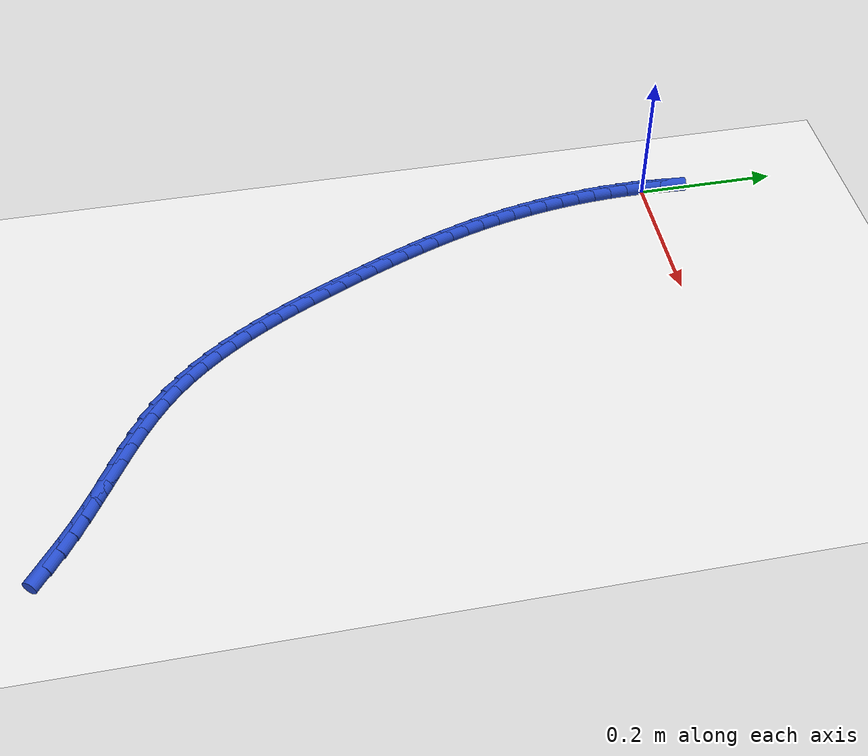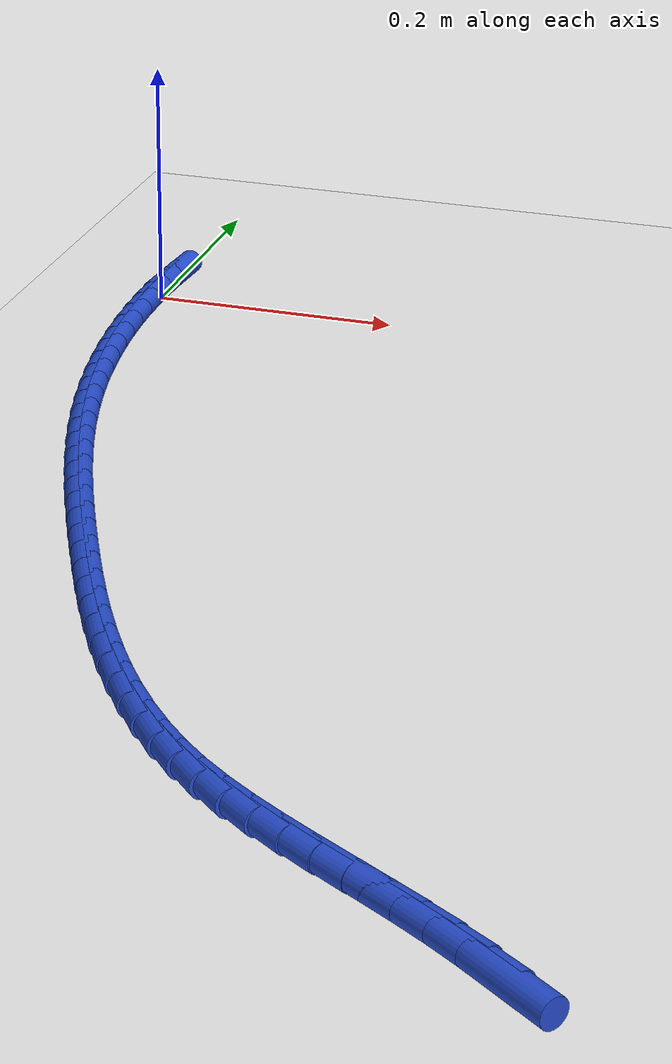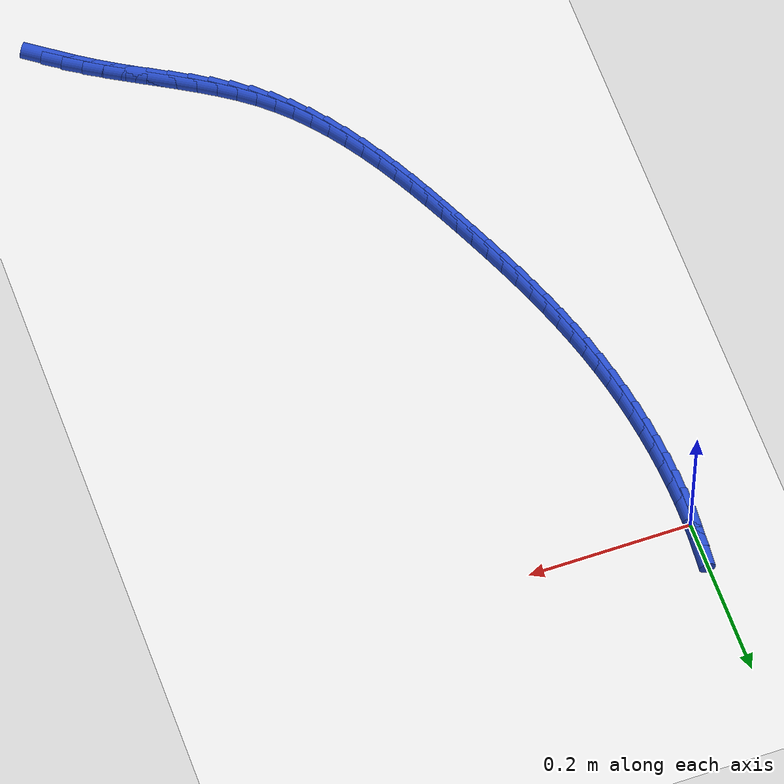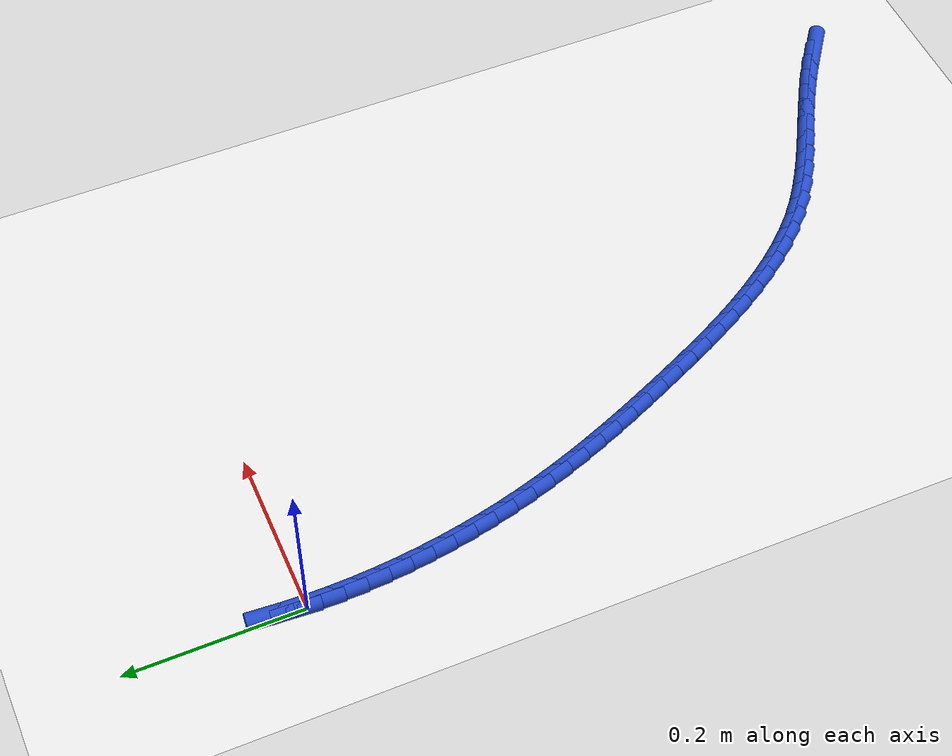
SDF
<sdf version="1.6">
 <world name="default">
  <model name="ground_plane">
   <static>1</static>
   <link name="link">
    <collision name="collision">
     <geometry><plane><normal>0 0 1</normal><size>100 100</size></plane></geometry>
     <surface><friction><ode><mu>100</mu><mu2>50</mu2></ode></friction></surface>
    </collision>
    <visual name="visual">
     <cast_shadows>0</cast_shadows>
     <geometry><plane><normal>0 0 1</normal><size>100 100</size></plane></geometry>
     <material>
      <script><uri>file://media/materials/scripts/gazebo.material</uri><name>Gazebo/WhiteGlow</name></script>
     </material>
    </visual>
   </link>
  </model>
  <model name="line">
   <link name="link_0">
    <pose>1.214306433183765e-17 3.469446951953614e-17 0.01 0 1.57 1.5339829788960886</pose>
    <collision name="collision">
     <geometry><cylinder><radius>0.01</radius><length>0.08</length></cylinder></geometry>
    </collision>
    <visual name="visual">
     <material>
      <script><name>Gazebo/Blue</name><uri>file://media/materials/scripts/gazebo.material</uri></script>
     </material>
     <geometry><cylinder><radius>0.01</radius><length>0.08</length></cylinder></geometry>
    </visual>
   </link>
   <link name="link_219">
    <pose>0.5007906378705129 -0.8554281643524542 0.01 0 1.57 -0.6216869499286858</pose>
    <collision name="collision">
     <geometry><cylinder><radius>0.01</radius><length>0.08</length></cylinder></geometry>
    </collision>
    <visual name="visual">
     <material>
      <script><name>Gazebo/Blue</name><uri>file://media/materials/scripts/gazebo.material</uri></script>
     </material>
     <geometry><cylinder><radius>0.01</radius><length>0.08</length></cylinder></geometry>
    </visual>
   </link>
   <link name="link_220">
    <pose>0.4795608764625124 -0.8402179147373394 0.01 0 1.57 -0.5879189418440153</pose>
    <collision name="collision">
     <geometry><cylinder><radius>0.01</radius><length>0.08</length></cylinder></geometry>
    </collision>
    <visual name="visual">
     <material>
      <script><name>Gazebo/Blue</name><uri>file://media/materials/scripts/gazebo.material</uri></script>
     </material>
     <geometry><cylinder><radius>0.01</radius><length>0.08</length></cylinder></geometry>
    </visual>
   </link>
   <link name="link_221">
    <pose>0.45790539792751817 -0.8257835458508354 0.01 0 1.57 -0.5529512063231349</pose>
    <collision name="collision">
     <geometry><cylinder><radius>0.01</radius><length>0.08</length></cylinder></geometry>
    </collision>
    <visual name="visual">
     <material>
      <script><name>Gazebo/Blue</name><uri>file://media/materials/scripts/gazebo.material</uri></script>
     </material>
     <geometry><cylinder><radius>0.01</radius><length>0.08</length></cylinder></geometry>
    </visual>
   </link>
   <link name="link_222">
    <pose>0.4358367705413384 -0.8121633816921523 0.01 0 1.57 -0.5291459372971848</pose>
    <collision name="collision">
     <geometry><cylinder><radius>0.01</radius><length>0.08</length></cylinder></geometry>
    </collision>
    <visual name="visual">
     <material>
      <script><name>Gazebo/Blue</name><uri>file://media/materials/scripts/gazebo.material</uri></script>
     </material>
     <geometry><cylinder><radius>0.01</radius><length>0.08</length></cylinder></geometry>
    </visual>
   </link>
   <link name="link_223">
    <pose>0.41352909046607245 -0.7991185123695362 0.01 0 1.57 -0.5176306730923373</pose>
    <collision name="collision">
     <geometry><cylinder><radius>0.01</radius><length>0.08</length></cylinder></geometry>
    </collision>
    <visual name="visual">
     <material>
      <script><name>Gazebo/Blue</name><uri>file://media/materials/scripts/gazebo.material</uri></script>
     </material>
     <geometry><cylinder><radius>0.01</radius><length>0.08</length></cylinder></geometry>
    </visual>
   </link>
   <link name="link_224">
    <pose>0.39116999127417507 -0.7863867934338247 0.01 0 1.57 -0.5185326467531155</pose>
    <collision name="collision">
     <geometry><cylinder><radius>0.01</radius><length>0.08</length></cylinder></geometry>
    </collision>
    <visual name="visual">
     <material>
      <script><name>Gazebo/Blue</name><uri>file://media/materials/scripts/gazebo.material</uri></script>
     </material>
     <geometry><cylinder><radius>0.01</radius><length>0.08</length></cylinder></geometry>
    </visual>
   </link>
   <link name="link_225">
    <pose>0.368947106538102 -0.7737060804358561 0.01 0 1.57 -0.5320654635970042</pose>
    <collision name="collision">
     <geometry><cylinder><radius>0.01</radius><length>0.08</length></cylinder></geometry>
    </collision>
    <visual name="visual">
     <material>
      <script><name>Gazebo/Blue</name><uri>file://media/materials/scripts/gazebo.material</uri></script>
     </material>
     <geometry><cylinder><radius>0.01</radius><length>0.08</length></cylinder></geometry>
    </visual>
   </link>
   <link name="link_226">
    <pose>0.34704806983030856 -0.7608142289264692 0.01 0 1.57 -0.5585291264294507</pose>
    <collision name="collision">
     <geometry><cylinder><radius>0.01</radius><length>0.08</length></cylinder></geometry>
    </collision>
    <visual name="visual">
     <material>
      <script><name>Gazebo/Blue</name><uri>file://media/materials/scripts/gazebo.material</uri></script>
     </material>
     <geometry><cylinder><radius>0.01</radius><length>0.08</length></cylinder></geometry>
    </visual>
   </link>
   <link name="link_227">
    <pose>0.3256605147232502 -0.7474490944565018 0.01 0 1.57 -0.598247533770198</pose>
    <collision name="collision">
     <geometry><cylinder><radius>0.01</radius><length>0.08</length></cylinder></geometry>
    </collision>
    <visual name="visual">
     <material>
      <script><name>Gazebo/Blue</name><uri>file://media/materials/scripts/gazebo.material</uri></script>
     </material>
     <geometry><cylinder><radius>0.01</radius><length>0.08</length></cylinder></geometry>
    </visual>
   </link>
   <link name="link_228">
    <pose>0.3049720747893822 -0.7333485325767923 0.01 0 1.57 -0.6514322849961153</pose>
    <collision name="collision">
     <geometry><cylinder><radius>0.01</radius><length>0.08</length></cylinder></geometry>
    </collision>
    <visual name="visual">
     <material>
      <script><name>Gazebo/Blue</name><uri>file://media/materials/scripts/gazebo.material</uri></script>
     </material>
     <geometry><cylinder><radius>0.01</radius><length>0.08</length></cylinder></geometry>
    </visual>
   </link>
   <link name="link_229">
    <pose>0.2851703836011595 -0.7182503988381785 0.01 0 1.57 -0.7169633179140327</pose>
    <collision name="collision">
     <geometry><cylinder><radius>0.01</radius><length>0.08</length></cylinder></geometry>
    </collision>
    <visual name="visual">
     <material>
      <script><name>Gazebo/Blue</name><uri>file://media/materials/scripts/gazebo.material</uri></script>
     </material>
     <geometry><cylinder><radius>0.01</radius><length>0.08</length></cylinder></geometry>
    </visual>
   </link>
   <link name="link_230">
    <pose>0.26642884532235017 -0.701913221673572 0.01 0 1.57 -0.7834834857074757</pose>
    <collision name="collision">
     <geometry><cylinder><radius>0.01</radius><length>0.08</length></cylinder></geometry>
    </collision>
    <visual name="visual">
     <material>
      <script><name>Gazebo/Blue</name><uri>file://media/materials/scripts/gazebo.material</uri></script>
     </material>
     <geometry><cylinder><radius>0.01</radius><length>0.08</length></cylinder></geometry>
    </visual>
   </link>
   <link name="link_231">
    <pose>0.24876707632964648 -0.6843189567050205 0.01 0 1.57 -0.8440082103598829</pose>
    <collision name="collision">
     <geometry><cylinder><radius>0.01</radius><length>0.08</length></cylinder></geometry>
    </collision>
    <visual name="visual">
     <material>
      <script><name>Gazebo/Blue</name><uri>file://media/materials/scripts/gazebo.material</uri></script>
     </material>
     <geometry><cylinder><radius>0.01</radius><length>0.08</length></cylinder></geometry>
    </visual>
   </link>
   <link name="link_232">
    <pose>0.23211073166680454 -0.665586069201438 0.01 0 1.57 -0.8983521574916439</pose>
    <collision name="collision">
     <geometry><cylinder><radius>0.01</radius><length>0.08</length></cylinder></geometry>
    </collision>
    <visual name="visual">
     <material>
      <script><name>Gazebo/Blue</name><uri>file://media/materials/scripts/gazebo.material</uri></script>
     </material>
     <geometry><cylinder><radius>0.01</radius><length>0.08</length></cylinder></geometry>
    </visual>
   </link>
   <link name="link_233">
    <pose>0.21638412044239616 -0.6458349798439378 0.01 0 1.57 -0.9466016414891985</pose>
    <collision name="collision">
     <geometry><cylinder><radius>0.01</radius><length>0.08</length></cylinder></geometry>
    </collision>
    <visual name="visual">
     <material>
      <script><name>Gazebo/Blue</name><uri>file://media/materials/scripts/gazebo.material</uri></script>
     </material>
     <geometry><cylinder><radius>0.01</radius><length>0.08</length></cylinder></geometry>
    </visual>
   </link>
   <link name="link_234">
    <pose>0.2015115517649931 -0.6251861093136329 0.01 0 1.57 -0.9889559539104145</pose>
    <collision name="collision">
     <geometry><cylinder><radius>0.01</radius><length>0.08</length></cylinder></geometry>
    </collision>
    <visual name="visual">
     <material>
      <script><name>Gazebo/Blue</name><uri>file://media/materials/scripts/gazebo.material</uri></script>
     </material>
     <geometry><cylinder><radius>0.01</radius><length>0.08</length></cylinder></geometry>
    </visual>
   </link>
   <link name="link_235">
    <pose>0.1874173347431672 -0.6037598782916368 0.01 0 1.57 -1.0256735852151533</pose>
    <collision name="collision">
     <geometry><cylinder><radius>0.01</radius><length>0.08</length></cylinder></geometry>
    </collision>
    <visual name="visual">
     <material>
      <script><name>Gazebo/Blue</name><uri>file://media/materials/scripts/gazebo.material</uri></script>
     </material>
     <geometry><cylinder><radius>0.01</radius><length>0.08</length></cylinder></geometry>
    </visual>
   </link>
   <link name="link_236">
    <pose>0.17402577848548992 -0.5816767074590622 0.01 0 1.57 -1.057030656007072</pose>
    <collision name="collision">
     <geometry><cylinder><radius>0.01</radius><length>0.08</length></cylinder></geometry>
    </collision>
    <visual name="visual">
     <material>
      <script><name>Gazebo/Blue</name><uri>file://media/materials/scripts/gazebo.material</uri></script>
     </material>
     <geometry><cylinder><radius>0.01</radius><length>0.08</length></cylinder></geometry>
    </visual>
   </link>
   <link name="link_237">
    <pose>0.16126119210053377 -0.5590570174970234 0.01 0 1.57 -1.083290688105771</pose>
    <collision name="collision">
     <geometry><cylinder><radius>0.01</radius><length>0.08</length></cylinder></geometry>
    </collision>
    <visual name="visual">
     <material>
      <script><name>Gazebo/Blue</name><uri>file://media/materials/scripts/gazebo.material</uri></script>
     </material>
     <geometry><cylinder><radius>0.01</radius><length>0.08</length></cylinder></geometry>
    </visual>
   </link>
   <link name="link_238">
    <pose>0.1490478846968701 -0.5360212290866331 0.01 0 1.57 -1.1046834686197442</pose>
    <collision name="collision">
     <geometry><cylinder><radius>0.01</radius><length>0.08</length></cylinder></geometry>
    </collision>
    <visual name="visual">
     <material>
      <script><name>Gazebo/Blue</name><uri>file://media/materials/scripts/gazebo.material</uri></script>
     </material>
     <geometry><cylinder><radius>0.01</radius><length>0.08</length></cylinder></geometry>
    </visual>
   </link>
   <link name="link_239">
    <pose>0.13731016538307084 -0.512689762909005 0.01 0 1.57 -1.1213904448932717</pose>
    <collision name="collision">
     <geometry><cylinder><radius>0.01</radius><length>0.08</length></cylinder></geometry>
    </collision>
    <visual name="visual">
     <material>
      <script><name>Gazebo/Blue</name><uri>file://media/materials/scripts/gazebo.material</uri></script>
     </material>
     <geometry><cylinder><radius>0.01</radius><length>0.08</length></cylinder></geometry>
    </visual>
   </link>
   <link name="link_240">
    <pose>0.12597234326770768 -0.4891830396452518 0.01 0 1.57 -1.1335343062804293</pose>
    <collision name="collision">
     <geometry><cylinder><radius>0.01</radius><length>0.08</length></cylinder></geometry>
    </collision>
    <visual name="visual">
     <material>
      <script><name>Gazebo/Blue</name><uri>file://media/materials/scripts/gazebo.material</uri></script>
     </material>
     <geometry><cylinder><radius>0.01</radius><length>0.08</length></cylinder></geometry>
    </visual>
   </link>
   <link name="link_241">
    <pose>0.11495872745935251 -0.46562147997648734 0.01 0 1.57 -1.1421815487849656</pose>
    <collision name="collision">
     <geometry><cylinder><radius>0.01</radius><length>0.08</length></cylinder></geometry>
    </collision>
    <visual name="visual">
     <material>
      <script><name>Gazebo/Blue</name><uri>file://media/materials/scripts/gazebo.material</uri></script>
     </material>
     <geometry><cylinder><radius>0.01</radius><length>0.08</length></cylinder></geometry>
    </visual>
   </link>
   <link name="link_242">
    <pose>0.10421164719974796 -0.4421020884875379 0.01 0 1.57 -1.1518789237869147</pose>
    <collision name="collision">
     <geometry><cylinder><radius>0.01</radius><length>0.08</length></cylinder></geometry>
    </collision>
    <visual name="visual">
     <material>
      <script><name>Gazebo/Blue</name><uri>file://media/materials/scripts/gazebo.material</uri></script>
     </material>
     <geometry><cylinder><radius>0.01</radius><length>0.08</length></cylinder></geometry>
    </visual>
   </link>
   <link name="link_243">
    <pose>0.09375425997836866 -0.4186168382402328 0.01 0 1.57 -1.1639153369285071</pose>
    <collision name="collision">
     <geometry><cylinder><radius>0.01</radius><length>0.08</length></cylinder></geometry>
    </collision>
    <visual name="visual">
     <material>
      <script><name>Gazebo/Blue</name><uri>file://media/materials/scripts/gazebo.material</uri></script>
     </material>
     <geometry><cylinder><radius>0.01</radius><length>0.08</length></cylinder></geometry>
    </visual>
   </link>
   <link name="link_244">
    <pose>0.08363237632966034 -0.39512826600549245 0.01 0 1.57 -1.1783008131908361</pose>
    <collision name="collision">
     <geometry><cylinder><radius>0.01</radius><length>0.08</length></cylinder></geometry>
    </collision>
    <visual name="visual">
     <material>
      <script><name>Gazebo/Blue</name><uri>file://media/materials/scripts/gazebo.material</uri></script>
     </material>
     <geometry><cylinder><radius>0.01</radius><length>0.08</length></cylinder></geometry>
    </visual>
   </link>
   <link name="link_245">
    <pose>0.07389180791234268 -0.3715989070933091 0.01 0 1.57 -1.1950315322214689</pose>
    <collision name="collision">
     <geometry><cylinder><radius>0.01</radius><length>0.08</length></cylinder></geometry>
    </collision>
    <visual name="visual">
     <material>
      <script><name>Gazebo/Blue</name><uri>file://media/materials/scripts/gazebo.material</uri></script>
     </material>
     <geometry><cylinder><radius>0.01</radius><length>0.08</length></cylinder></geometry>
    </visual>
   </link>
   <link name="link_246">
    <pose>0.06457836638513617 -0.3479912968136768 0.01 0 1.57 -1.2140873200124218</pose>
    <collision name="collision">
     <geometry><cylinder><radius>0.01</radius><length>0.08</length></cylinder></geometry>
    </collision>
    <visual name="visual">
     <material>
      <script><name>Gazebo/Blue</name><uri>file://media/materials/scripts/gazebo.material</uri></script>
     </material>
     <geometry><cylinder><radius>0.01</radius><length>0.08</length></cylinder></geometry>
    </visual>
   </link>
   <link name="link_247">
    <pose>0.05573786340676048 -0.3242679704765877 0.01 0 1.57 -1.2354289295290677</pose>
    <collision name="collision">
     <geometry><cylinder><radius>0.01</radius><length>0.08</length></cylinder></geometry>
    </collision>
    <visual name="visual">
     <material>
      <script><name>Gazebo/Blue</name><uri>file://media/materials/scripts/gazebo.material</uri></script>
     </material>
     <geometry><cylinder><radius>0.01</radius><length>0.08</length></cylinder></geometry>
    </visual>
   </link>
   <link name="link_248">
    <pose>0.047416110635935586 -0.3003914633920346 0.01 0 1.57 -1.2589953347147538</pose>
    <collision name="collision">
     <geometry><cylinder><radius>0.01</radius><length>0.08</length></cylinder></geometry>
    </collision>
    <visual name="visual">
     <material>
      <script><name>Gazebo/Blue</name><uri>file://media/materials/scripts/gazebo.material</uri></script>
     </material>
     <geometry><cylinder><radius>0.01</radius><length>0.08</length></cylinder></geometry>
    </visual>
   </link>
   <link name="link_249">
    <pose>0.039658919731381415 -0.27632431087001036 0.01 0 1.57 -1.284701248197226</pose>
    <collision name="collision">
     <geometry><cylinder><radius>0.01</radius><length>0.08</length></cylinder></geometry>
    </collision>
    <visual name="visual">
     <material>
      <script><name>Gazebo/Blue</name><uri>file://media/materials/scripts/gazebo.material</uri></script>
     </material>
     <geometry><cylinder><radius>0.01</radius><length>0.08</length></cylinder></geometry>
    </visual>
   </link>
   <link name="link_250">
    <pose>0.0325121023518179 -0.25202904822050765 0.01 0 1.57 -1.312396426864923</pose>
    <collision name="collision">
     <geometry><cylinder><radius>0.01</radius><length>0.08</length></cylinder></geometry>
    </collision>
    <visual name="visual">
     <material>
      <script><name>Gazebo/Blue</name><uri>file://media/materials/scripts/gazebo.material</uri></script>
     </material>
     <geometry><cylinder><radius>0.01</radius><length>0.08</length></cylinder></geometry>
    </visual>
   </link>
   <link name="link_251">
    <pose>0.02602085761427542 -0.22746973940252002 0.01 0 1.57 -1.3410144460577718</pose>
    <collision name="collision">
     <geometry><cylinder><radius>0.01</radius><length>0.08</length></cylinder></geometry>
    </collision>
    <visual name="visual">
     <material>
      <script><name>Gazebo/Blue</name><uri>file://media/materials/scripts/gazebo.material</uri></script>
     </material>
     <geometry><cylinder><radius>0.01</radius><length>0.08</length></cylinder></geometry>
    </visual>
   </link>
   <link name="link_252">
    <pose>0.02021494928275725 -0.2026489685890623 0.01 0 1.57 -1.3695943266095136</pose>
    <collision name="collision">
     <geometry><cylinder><radius>0.01</radius><length>0.08</length></cylinder></geometry>
    </collision>
    <visual name="visual">
     <material>
      <script><name>Gazebo/Blue</name><uri>file://media/materials/scripts/gazebo.material</uri></script>
     </material>
     <geometry><cylinder><radius>0.01</radius><length>0.08</length></cylinder></geometry>
    </visual>
   </link>
   <link name="link_253">
    <pose>0.015107918203984562 -0.1776098055996212 0.01 0 1.57 -1.3981978614150194</pose>
    <collision name="collision">
     <geometry><cylinder><radius>0.01</radius><length>0.08</length></cylinder></geometry>
    </collision>
    <visual name="visual">
     <material>
      <script><name>Gazebo/Blue</name><uri>file://media/materials/scripts/gazebo.material</uri></script>
     </material>
     <geometry><cylinder><radius>0.01</radius><length>0.08</length></cylinder></geometry>
    </visual>
   </link>
   <link name="link_254">
    <pose>0.010712535047844732 -0.15239724229436294 0.01 0 1.57 -1.4269342654825454</pose>
    <collision name="collision">
     <geometry><cylinder><radius>0.01</radius><length>0.08</length></cylinder></geometry>
    </collision>
    <visual name="visual">
     <material>
      <script><name>Gazebo/Blue</name><uri>file://media/materials/scripts/gazebo.material</uri></script>
     </material>
     <geometry><cylinder><radius>0.01</radius><length>0.08</length></cylinder></geometry>
    </visual>
   </link>
   <link name="link_255">
    <pose>0.007041570484225343 -0.12705627053345445 0.01 0 1.57 -1.4559122676630287</pose>
    <collision name="collision">
     <geometry><cylinder><radius>0.01</radius><length>0.08</length></cylinder></geometry>
    </collision>
    <visual name="visual">
     <material>
      <script><name>Gazebo/Blue</name><uri>file://media/materials/scripts/gazebo.material</uri></script>
     </material>
     <geometry><cylinder><radius>0.01</radius><length>0.08</length></cylinder></geometry>
    </visual>
   </link>
   <link name="link_256">
    <pose>0.004107795183013963 -0.10163188217706262 0.01 0 1.57 -1.485240797926832</pose>
    <collision name="collision">
     <geometry><cylinder><radius>0.01</radius><length>0.08</length></cylinder></geometry>
    </collision>
    <visual name="visual">
     <material>
      <script><name>Gazebo/Blue</name><uri>file://media/materials/scripts/gazebo.material</uri></script>
     </material>
     <geometry><cylinder><radius>0.01</radius><length>0.08</length></cylinder></geometry>
    </visual>
   </link>
   <link name="link_257">
    <pose>0.00192397981409817 -0.07616906908535437 0.01 0 1.57 -1.515029608226806</pose>
    <collision name="collision">
     <geometry><cylinder><radius>0.01</radius><length>0.08</length></cylinder></geometry>
    </collision>
    <visual name="visual">
     <material>
      <script><name>Gazebo/Blue</name><uri>file://media/materials/scripts/gazebo.material</uri></script>
     </material>
     <geometry><cylinder><radius>0.01</radius><length>0.08</length></cylinder></geometry>
    </visual>
   </link>
   <link name="link_258">
    <pose>0.0005028950473655327 -0.050712823118496606 0.01 0 1.57 -1.5453898109412174</pose>
    <collision name="collision">
     <geometry><cylinder><radius>0.01</radius><length>0.08</length></cylinder></geometry>
    </collision>
    <visual name="visual">
     <material>
      <script><name>Gazebo/Blue</name><uri>file://media/materials/scripts/gazebo.material</uri></script>
     </material>
     <geometry><cylinder><radius>0.01</radius><length>0.08</length></cylinder></geometry>
    </visual>
   </link>
   <link name="link_259">
    <pose>-0.0001426884472963733 -0.025308136136656213 0.01 0 1.57 1.56515834007598</pose>
    <collision name="collision">
     <geometry><cylinder><radius>0.01</radius><length>0.08</length></cylinder></geometry>
    </collision>
    <visual name="visual">
     <material>
      <script><name>Gazebo/Blue</name><uri>file://media/materials/scripts/gazebo.material</uri></script>
     </material>
     <geometry><cylinder><radius>0.01</radius><length>0.08</length></cylinder></geometry>
    </visual>
   </link>
   <link name="link_260">
    <pose>2.0816681711721685e-17 -1.249000902703301e-16 0.01 0 1.57 1.533314532692806</pose>
    <collision name="collision">
     <geometry><cylinder><radius>0.01</radius><length>0.08</length></cylinder></geometry>
    </collision>
    <visual name="visual">
     <material>
      <script><name>Gazebo/Blue</name><uri>file://media/materials/scripts/gazebo.material</uri></script>
     </material>
     <geometry><cylinder><radius>0.01</radius><length>0.08</length></cylinder></geometry>
    </visual>
   </link>
   <link name="link_261">
    <pose>0.0009437310591422898 0.025166593431304746 0.01 0 1.57 1.50055418490135</pose>
    <collision name="collision">
     <geometry><cylinder><radius>0.01</radius><length>0.08</length></cylinder></geometry>
    </collision>
    <visual name="visual">
     <material>
      <script><name>Gazebo/Blue</name><uri>file://media/materials/scripts/gazebo.material</uri></script>
     </material>
     <geometry><cylinder><radius>0.01</radius><length>0.08</length></cylinder></geometry>
    </visual>
   </link>
  </model>
 </world>
</sdf>
